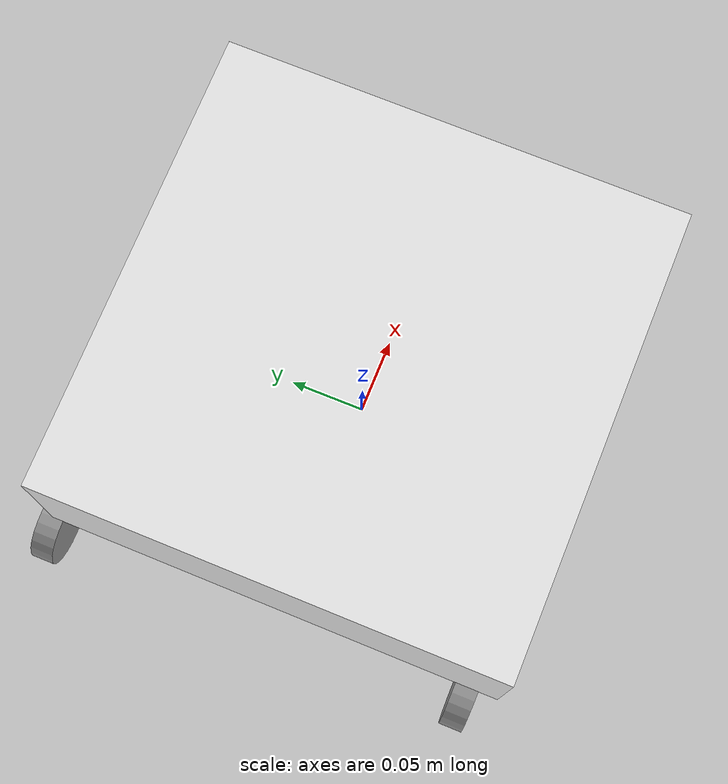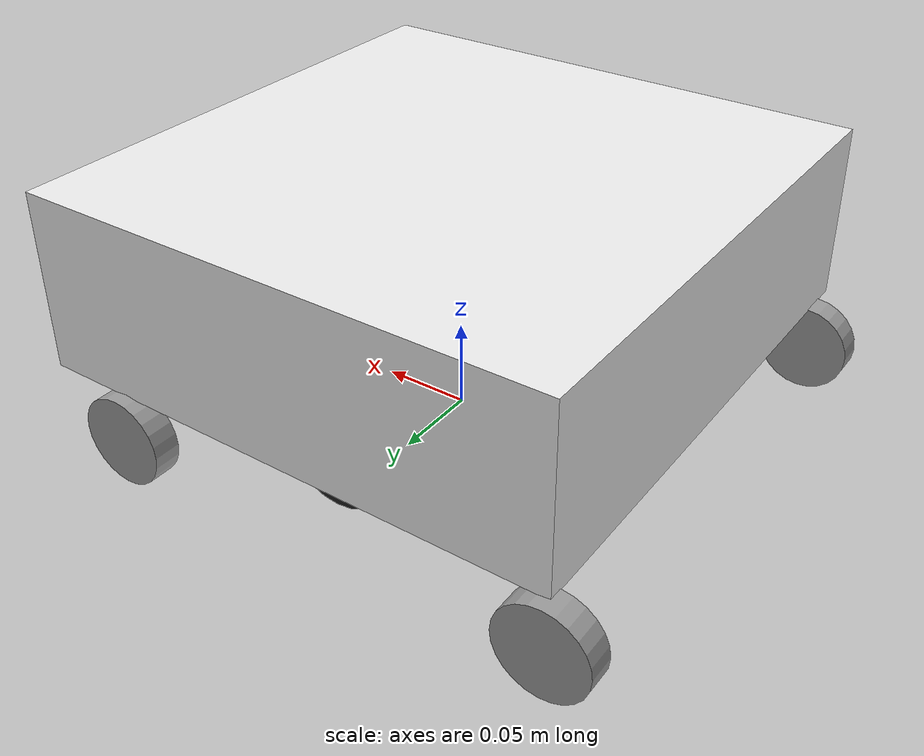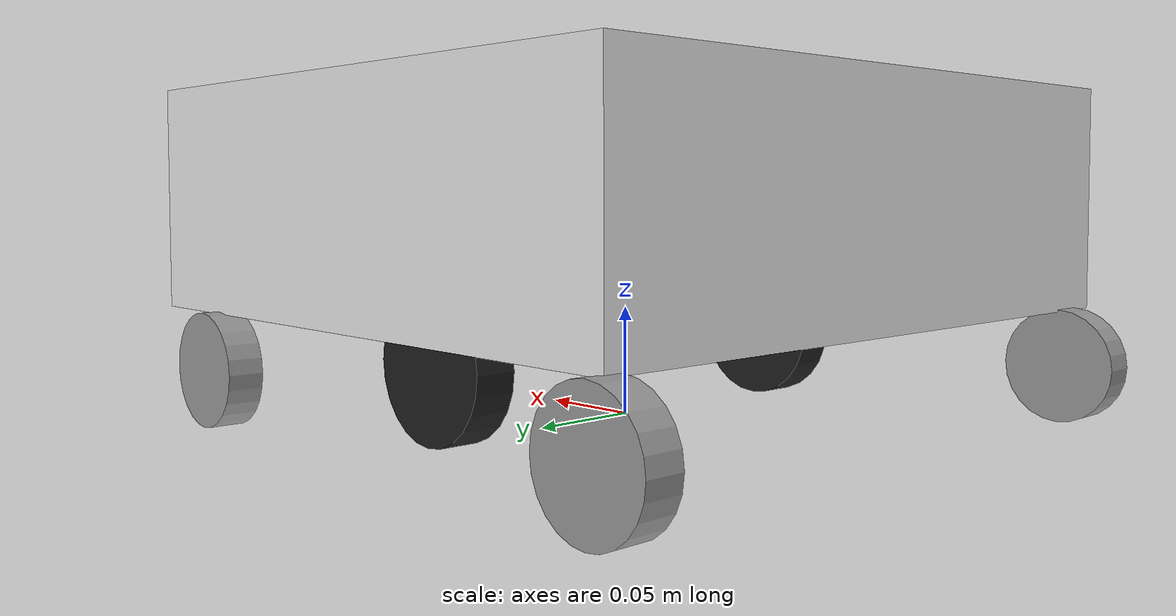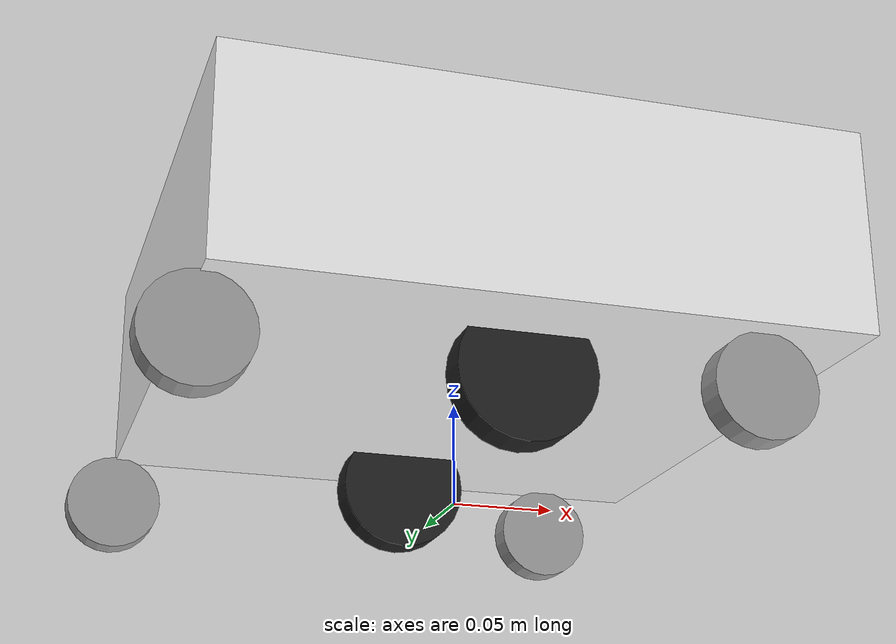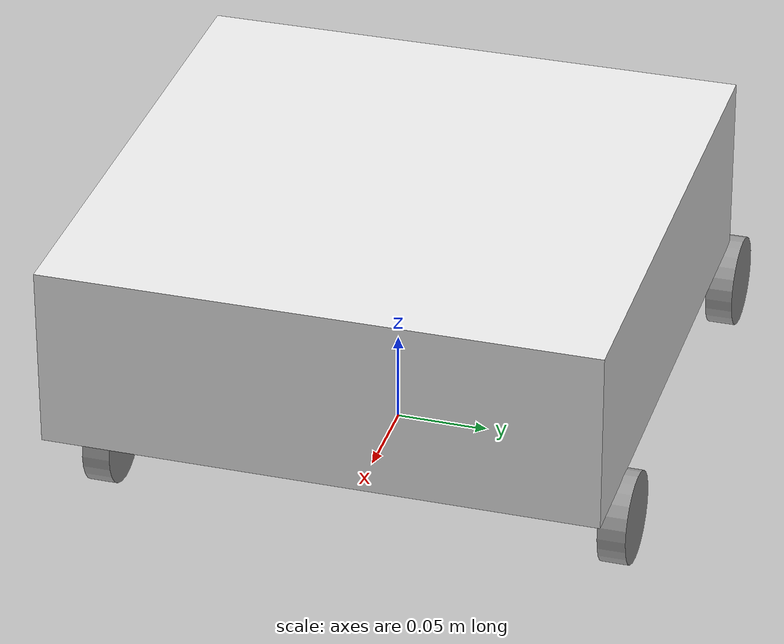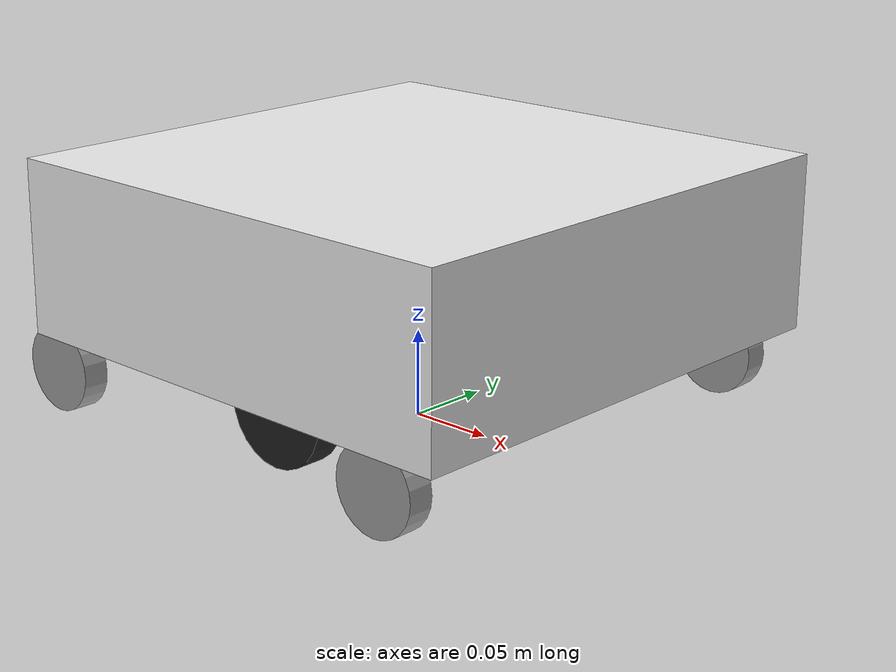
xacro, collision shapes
<?xml version="1.0" ?>
<robot name="$(arg robotName)" xmlns:xacro="http://ros.org/wiki/xacro">

  <xacro:include filename="$(find car_description)/src/urdf/common_properties.xacro"/>
  <xacro:include filename="$(find car_description)/src/urdf/car_gazebo.xacro"/>

  <xacro:property name="r200_cam_rgb_px" value="0.005"/>
  <xacro:property name="r200_cam_rgb_py" value="0.018"/>
  <xacro:property name="r200_cam_rgb_pz" value="0.013"/>
  <xacro:property name="r200_cam_depth_offset" value="0.01"/>

    <!-- #### constants #### -->
    <xacro:property name="deg_to_rad" value="0.017453"/>
    <xacro:property name="PI" value="3.14"/>

    <xacro:macro name="cylinder_inertia" params ="m r h">
        <inertial>
            <mass value="${m}"/>
            <inertia ixx="${m*(3*r*r+h*h)/12}" ixy="0.0" ixz="0.0"
                     iyy="${m*(3*r*r+h*h)/12}" iyz= "0.0"
                     izz="${m*r*r/2}"/>
         </inertial>
     </xacro:macro>

    <!-- #### chassis property #### -->
    <xacro:property name="chassis_length" value="0.3"/>
    <xacro:property name="chassis_width" value="0.3"/>
    <xacro:property name="chassis_height" value="0.1"/>

    <!-- ####  caster property #### -->
    <xacro:property name="caster_radius" value="0.025"/>
    <xacro:property name="caster_length" value="0.015"/>
    <xacro:property name="caster_mass" value="0.2"/>

    <!-- #####  caster macro   ##### -->

    <xacro:macro name="caster" params= "prefix suffix X1 X2 Y1 Y2">

      <joint name="${prefix}_${suffix}_caster_joint" type="fixed">
        <parent link= "chassis"/>
        <child link= "${prefix}_${suffix}_caster"/>
        <origin xyz= "${(chassis_length/2)*X1 + (chassis_length/2-.05)*X2} ${(chassis_width/2-0.02)*Y1 + (chassis_width/2)*Y2}  0.026" rpy="0 0 0"/>
        <dynamics damping="0.0" friction="0.0"/>
      </joint>

      <link name= "${prefix}_${suffix}_caster">
        <visual>
          <origin rpy= "${PI/2} 0 0" xyz= "0 0 -0.025"/>
          <geometry>
              <mesh filename="package://car_description/src/meshes/caster.stl" scale="0.0002 0.0002 0.0002"/>
          </geometry>
          <material name= "grey"/>
        </visual>
        <collision>
          <origin rpy= "${PI/2} 0 0" xyz= "0 0 0"/>
          <geometry>
            <cylinder length="${caster_length}" radius= "${caster_radius}"/>
          </geometry>
        </collision>
        <xacro:cylinder_inertia m="${caster_mass}" r="${caster_radius}" h="${caster_length}"/>
      </link>

      <gazebo reference ="${prefix}_${suffix}_caster">
        <mu1 value="0.00001"/>
        <mu2 value="0.00001"/>
        <kp value="10000000.0"/>
        <kd value= "1.0"/>
        <material>Gazebo/WhiteGlow</material>
      </gazebo>
    </xacro:macro>

  <link name="base_footprint"/>

<!-- #####   BEGIN  ##### -->
<!-- #####  A1 PART ##### -->
<!-- #####   BEGIN  ##### -->

  <joint name="base_joint" type="fixed">
    <parent link="base_footprint"/>
    <child link="chassis" />
    <origin xyz="0 0 0.0" rpy="0 0 0"/>
  </joint>

  <link name="chassis">
    <visual>
      <origin xyz="0.0 0 0.1" rpy="0 0 0"/>
      <geometry>
        <box size="${chassis_length} ${chassis_width} ${chassis_height}"/>
      </geometry>
      <material name="white"/>
    </visual>

    <collision>
      <origin xyz="0.0 0 0.1" rpy="0 0 0"/>
      <geometry>
        <box size="${chassis_length} ${chassis_width} ${chassis_height}"/>
      </geometry>
    </collision>

    <inertial>
      <origin xyz="0 0 0" rpy="0 0 0"/>
      <mass value="15"/>
      <inertia ixx="1.15625e-01" ixy="0" ixz="0"
               iyy="1.15625e-01" iyz="0"
               izz="2.25e-01" />
    </inertial>
  </link>

  <joint name="wheel_left_joint" type="continuous">
    <parent link="chassis"/>
    <child link="wheel_left_link"/>
    <origin xyz="0.0 ${chassis_width/2-0.05} 0.033" rpy="-1.57 0 0"/>
    <axis xyz="0 0 1"/>
  </joint>

  <link name="wheel_left_link">
    <visual>
      <origin xyz="0 0 0" rpy="1.57 0 0"/>
      <geometry>
          <mesh filename="package://car_description/src/meshes/right_tire.stl" scale="0.001 0.001 0.001"/>
      </geometry>
      <material name="dark"/>
    </visual>

    <collision>
      <origin xyz="0 0 0" rpy="0 0 0"/>
      <geometry>
        <cylinder length="0.018" radius="0.033"/>
      </geometry>
    </collision>

    <inertial>
      <origin xyz="0 0 0" />
      <mass value="2.8498940e-02" />
      <inertia ixx="1.1175580e-05" ixy="-4.2369783e-11" ixz="-5.9381719e-09"
               iyy="1.1192413e-05" iyz="-1.4400107e-11"
               izz="2.0712558e-05" />
      </inertial>
  </link>

  <joint name="wheel_right_joint" type="continuous">
    <parent link="chassis"/>
    <child link="wheel_right_link"/>
    <origin xyz="0.0 -${chassis_width/2-0.05} 0.033" rpy="-1.57 0 0"/>
    <axis xyz="0 0 1"/>
  </joint>

  <link name="wheel_right_link">
    <visual>
      <origin xyz="0 0 0" rpy="1.57 0 0"/>
      <geometry>
          <mesh filename="package://car_description/src/meshes/right_tire.stl" scale="0.001 0.001 0.001"/>
      </geometry>
      <material name="dark"/>
    </visual>

    <collision>
      <origin xyz="0 0 0" rpy="0 0 0"/>
      <geometry>
        <cylinder length="0.018" radius="0.033"/>
      </geometry>
    </collision>

    <inertial>
      <origin xyz="0 0 0" />
      <mass value="2.8498940e-02" />
      <inertia ixx="1.1175580e-05" ixy="-4.2369783e-11" ixz="-5.9381719e-09"
               iyy="1.1192413e-05" iyz="-1.4400107e-11"
               izz="2.0712558e-05" />
      </inertial>
  </link>

<!-- #### 4 casters  #### -->
  <xacro:caster prefix="right" suffix="front" X1="0" X2="1" Y1="-1" Y2="0" />
  <xacro:caster prefix="right" suffix="back" X1="-1" X2="0" Y1="-1" Y2="0"/>
  <xacro:caster prefix="left" suffix="front" X1="0" X2="1" Y1="0" Y2="1"/>
  <xacro:caster prefix="left" suffix="back" X1="-1" X2="0" Y1="0" Y2="1"/>

<!-- #### Sensors : Lidar #### -->

  <joint name="scan_joint1" type="fixed">
    <parent link="chassis"/>
    <child link="scan_lidar"/>
    <origin xyz="0 0 0.21" rpy="0 0 0"/>

  </joint>

  <link name="scan_lidar">
    <visual>
      <origin xyz="0 0 -.06" rpy="${PI/2} 0 0"/>
      <geometry>
        <mesh filename="package://car_description/src/meshes/sensors/hokuyo_lidar.stl" scale="0.012 0.012 0.012"/>
      </geometry>
      <material name="black"/>
    </visual>

    <inertial>
      <mass value="0.114" />
      <origin xyz="0 0 0" />
      <inertia ixx="0.001" ixy="0.0" ixz="0.0"
               iyy="0.001" iyz="0.0"
               izz="0.001" />
    </inertial>
  </link>

  <gazebo>
    <plugin name="gazebo_ros_control" filename="libgazebo_ros_control.so">
      <robotSimType>gazebo_ros_control/DefaultRobotHWSim</robotSimType>
      <legacyModeNS>true</legacyModeNS>
    </plugin>
  </gazebo>

<!-- Sensors : IMU -->
  <joint name="imu_joint" type="fixed">
      <parent link="chassis"/>
      <child link="imu_link"/>
      <origin xyz="0 0 0" rpy="0 0 0"/>
  </joint>
  <link name="imu_link">

  </link>

<!-- Begin of camera -->

</robot>
